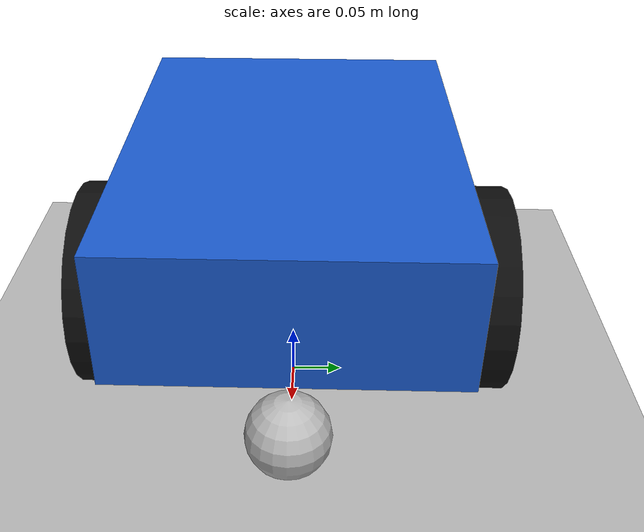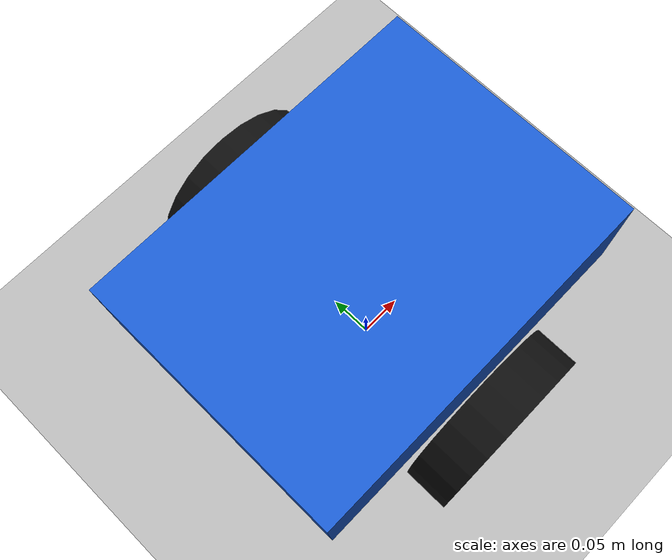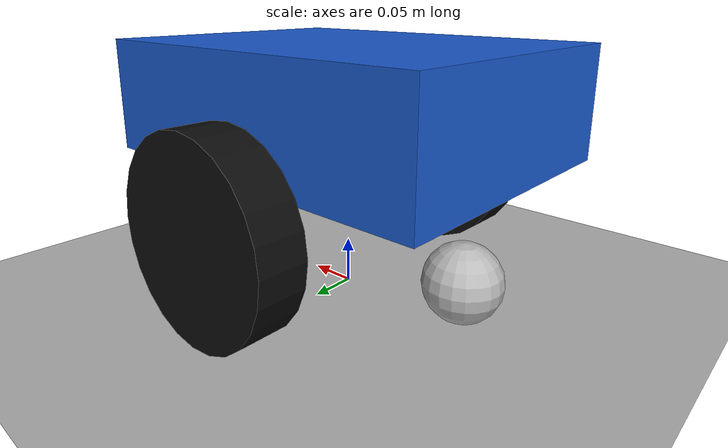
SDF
<?xml version="1.0" ?>
<sdf version="1.9">
  <world name="minimal_robot_world">
    <plugin filename="gz-sim-physics-system"
            name="gz::sim::systems::Physics"/>
    <plugin filename="gz-sim-user-commands-system"
            name="gz::sim::systems::UserCommands"/>
    <plugin filename="gz-sim-scene-broadcaster-system"
            name="gz::sim::systems::SceneBroadcaster"/>

    <gravity>0 0 -9.81</gravity>

    <light type="directional" name="sun">
      <cast_shadows>true</cast_shadows>
      <pose>0 0 10 0 0 0</pose>
      <diffuse>0.8 0.8 0.8 1</diffuse>
      <specular>0.2 0.2 0.2 1</specular>
      <direction>-0.5 0.1 -0.9</direction>
    </light>

    <model name="ground_plane">
      <static>true</static>
      <link name="ground_link">
        <collision name="ground_collision">
          <geometry>
            <plane>
              <normal>0 0 1</normal>
              <size>20 20</size>
            </plane>
          </geometry>
        </collision>
        <visual name="ground_visual">
          <geometry>
            <plane>
              <normal>0 0 1</normal>
              <size>20 20</size>
            </plane>
          </geometry>
          <material>
            <ambient>0.7 0.7 0.7 1</ambient>
            <diffuse>0.7 0.7 0.7 1</diffuse>
          </material>
        </visual>
      </link>
    </model>

    <model name="minimal_robot">
      <pose>0 0 0.11 0 0 0</pose>

      <link name="chassis">
        <pose>0 0 0.10 0 0 0</pose>
        <inertial>
          <mass>5.0</mass>
          <inertia>
            <ixx>0.0435</ixx>
            <iyy>0.0727</iyy>
            <izz>0.1042</izz>
          </inertia>
        </inertial>
        <collision name="chassis_collision">
          <geometry>
            <box>
              <size>0.4 0.3 0.12</size>
            </box>
          </geometry>
        </collision>
        <visual name="chassis_visual">
          <geometry>
            <box>
              <size>0.4 0.3 0.12</size>
            </box>
          </geometry>
          <material>
            <ambient>0.1 0.35 0.8 1</ambient>
            <diffuse>0.1 0.35 0.8 1</diffuse>
          </material>
        </visual>
      </link>

      <link name="left_wheel">
        <pose>0 0.18 0 1.57079632679 0 0</pose>
        <inertial>
          <mass>0.5</mass>
          <inertia>
            <ixx>0.00135</ixx>
            <iyy>0.00135</iyy>
            <izz>0.0025</izz>
          </inertia>
        </inertial>
        <collision name="left_wheel_collision">
          <geometry>
            <cylinder>
              <radius>0.1</radius>
              <length>0.05</length>
            </cylinder>
          </geometry>
          <surface>
            <friction>
              <ode>
                <mu>1.0</mu>
                <mu2>1.0</mu2>
              </ode>
            </friction>
          </surface>
        </collision>
        <visual name="left_wheel_visual">
          <geometry>
            <cylinder>
              <radius>0.1</radius>
              <length>0.05</length>
            </cylinder>
          </geometry>
          <material>
            <ambient>0.05 0.05 0.05 1</ambient>
            <diffuse>0.05 0.05 0.05 1</diffuse>
          </material>
        </visual>
      </link>

      <link name="right_wheel">
        <pose>0 -0.18 0 1.57079632679 0 0</pose>
        <inertial>
          <mass>0.5</mass>
          <inertia>
            <ixx>0.00135</ixx>
            <iyy>0.00135</iyy>
            <izz>0.0025</izz>
          </inertia>
        </inertial>
        <collision name="right_wheel_collision">
          <geometry>
            <cylinder>
              <radius>0.1</radius>
              <length>0.05</length>
            </cylinder>
          </geometry>
          <surface>
            <friction>
              <ode>
                <mu>1.0</mu>
                <mu2>1.0</mu2>
              </ode>
            </friction>
          </surface>
        </collision>
        <visual name="right_wheel_visual">
          <geometry>
            <cylinder>
              <radius>0.1</radius>
              <length>0.05</length>
            </cylinder>
          </geometry>
          <material>
            <ambient>0.05 0.05 0.05 1</ambient>
            <diffuse>0.05 0.05 0.05 1</diffuse>
          </material>
        </visual>
      </link>

      <link name="rear_caster">
        <pose>-0.15 0 -0.06 0 0 0</pose>
        <inertial>
          <mass>0.1</mass>
          <inertia>
            <ixx>0.000064</ixx>
            <iyy>0.000064</iyy>
            <izz>0.000064</izz>
          </inertia>
        </inertial>
        <collision name="rear_caster_collision">
          <geometry>
            <sphere>
              <radius>0.04</radius>
            </sphere>
          </geometry>
          <surface>
            <friction>
              <ode>
                <mu>0.0</mu>
                <mu2>0.0</mu2>
              </ode>
            </friction>
          </surface>
        </collision>
        <visual name="rear_caster_visual">
          <geometry>
            <sphere>
              <radius>0.04</radius>
            </sphere>
          </geometry>
        </visual>
      </link>

      <link name="front_caster">
        <pose>0.15 0 -0.06 0 0 0</pose>
        <inertial>
          <mass>0.1</mass>
          <inertia>
            <ixx>0.000064</ixx>
            <iyy>0.000064</iyy>
            <izz>0.000064</izz>
          </inertia>
        </inertial>
        <collision name="front_caster_collision">
          <geometry>
            <sphere>
              <radius>0.04</radius>
            </sphere>
          </geometry>
          <surface>
            <friction>
              <ode>
                <mu>0.0</mu>
                <mu2>0.0</mu2>
              </ode>
            </friction>
          </surface>
        </collision>
        <visual name="front_caster_visual">
          <geometry>
            <sphere>
              <radius>0.04</radius>
            </sphere>
          </geometry>
        </visual>
      </link>

      <joint name="left_wheel_joint" type="revolute">
        <parent>chassis</parent>
        <child>left_wheel</child>
        <axis>
          <xyz expressed_in="__model__">0 1 0</xyz>
        </axis>
      </joint>

      <joint name="right_wheel_joint" type="revolute">
        <parent>chassis</parent>
        <child>right_wheel</child>
        <axis>
          <xyz expressed_in="__model__">0 1 0</xyz>
        </axis>
      </joint>

      <joint name="rear_caster_joint" type="fixed">
        <parent>chassis</parent>
        <child>rear_caster</child>
      </joint>

      <joint name="front_caster_joint" type="fixed">
        <parent>chassis</parent>
        <child>front_caster</child>
      </joint>

      <plugin filename="gz-sim-diff-drive-system"
              name="gz::sim::systems::DiffDrive">
        <left_joint>left_wheel_joint</left_joint>
        <right_joint>right_wheel_joint</right_joint>
        <wheel_separation>0.36</wheel_separation>
        <wheel_radius>0.1</wheel_radius>
        <topic>/model/minimal_robot/cmd_vel</topic>
        <odom_topic>/model/minimal_robot/odometry</odom_topic>
        <frame_id>odom</frame_id>
        <child_frame_id>minimal_robot/chassis</child_frame_id>
        <odom_publish_frequency>30</odom_publish_frequency>
      </plugin>
    </model>
  </world>
</sdf>
